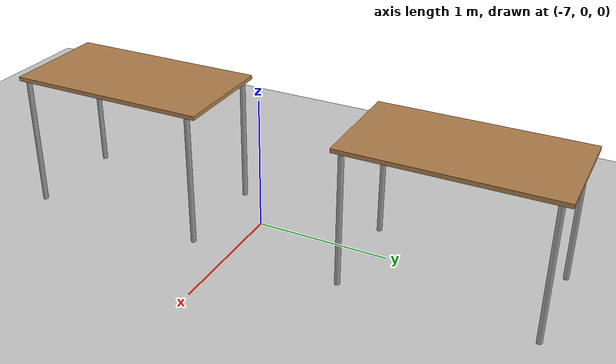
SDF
<sdf version="1.9">
 <world name="warehouse_world">
  <physics name="1ms" type="bullet">
   <max_step_size>0.0040000000000000001</max_step_size>
   <real_time_factor>1</real_time_factor>
   <real_time_update_rate>4000</real_time_update_rate>
  </physics>
  <plugin name="gz::sim::systems::Physics" filename="ignition-gazebo-physics-system"/>
  <plugin name="gz::sim::systems::UserCommands" filename="ignition-gazebo-user-commands-system"/>
  <plugin name="gz::sim::systems::SceneBroadcaster" filename="ignition-gazebo-scene-broadcaster-system"/>
  <plugin name="gz::sim::systems::Contact" filename="ignition-gazebo-contact-system"/>
  <gravity>0 0 -9.8</gravity>
  <magnetic_field>6e-06 2.3e-05 -4.2e-05</magnetic_field>
  <atmosphere type="adiabatic"/>
  <scene><ambient>0.4 0.4 0.4 1</ambient><background>0.7 0.7 0.7 1</background><shadows>true</shadows></scene>
  <model name="ground_plane">
   <static>true</static>
   <link name="link">
    <collision name="collision">
     <geometry><plane><normal>0 0 1</normal><size>100 100</size></plane></geometry>
    </collision>
    <visual name="visual">
     <geometry><plane><normal>0 0 1</normal><size>100 100</size></plane></geometry>
     <material>
      <ambient>0.8 0.8 0.8 1</ambient>
      <diffuse>0.8 0.8 0.8 1</diffuse>
      <specular>0.8 0.8 0.8 1</specular>
     </material>
    </visual>
    <inertial>
     <mass>1</mass>
     <inertia><ixx>1</ixx><ixy>0</ixy><ixz>0</ixz><iyy>1</iyy><iyz>0</iyz><izz>1</izz></inertia>
    </inertial>
   </link>
  </model>
  <model name="Table">
   <static>true</static>
   <link name="link">
    <collision name="surface">
     <pose>0 0 1.0 0 0 0</pose>
     <geometry><box><size>1.5 0.8 0.03</size></box></geometry>
     <surface><friction><ode><mu>0.59999999999999998</mu><mu2>0.59999999999999998</mu2></ode></friction></surface>
    </collision>
    <visual name="visual1">
     <pose>0 0 1.0 0 0 0</pose>
     <geometry><box><size>1.5 0.8 0.03</size></box></geometry>
     <material>
      <diffuse>1 1 1 1</diffuse>
      <script><uri>file://media/materials/scripts/gazebo.material</uri><name>Gazebo/Wood</name></script>
      <pbr><metal><albedo_map>model://Table/Table_Diffuse.jpg</albedo_map></metal></pbr>
     </material>
    </visual>
    <collision name="front_left_leg">
     <pose>0.68 0.38 0.5 0 0 0</pose>
     <geometry><cylinder><radius>0.02</radius><length>1</length></cylinder></geometry>
    </collision>
    <visual name="front_left_leg">
     <pose>0.68 0.38 0.5 0 0 0</pose>
     <geometry><cylinder><radius>0.02</radius><length>1</length></cylinder></geometry>
     <material>
      <diffuse>0.5 0.5 0.5 1</diffuse>
      <script><uri>file://media/materials/scripts/gazebo.material</uri><name>Gazebo/Grey</name></script>
     </material>
    </visual>
    <collision name="front_right_leg">
     <pose>0.68 -0.38 0.5 0 0 0</pose>
     <geometry><cylinder><radius>0.02</radius><length>1</length></cylinder></geometry>
    </collision>
    <visual name="front_right_leg">
     <pose>0.68 -0.38 0.5 0 0 0</pose>
     <geometry><cylinder><radius>0.02</radius><length>1</length></cylinder></geometry>
     <material>
      <diffuse>0.5 0.5 0.5 1</diffuse>
      <script><uri>file://media/materials/scripts/gazebo.material</uri><name>Gazebo/Grey</name></script>
     </material>
    </visual>
    <collision name="back_right_leg">
     <pose>-0.68 -0.38 0.5 0 0 0</pose>
     <geometry><cylinder><radius>0.02</radius><length>1</length></cylinder></geometry>
    </collision>
    <visual name="back_right_leg">
     <pose>-0.68 -0.38 0.5 0 0 0</pose>
     <geometry><cylinder><radius>0.02</radius><length>1</length></cylinder></geometry>
     <material>
      <diffuse>0.5 0.5 0.5 1</diffuse>
      <script><uri>file://media/materials/scripts/gazebo.material</uri><name>Gazebo/Grey</name></script>
     </material>
    </visual>
    <collision name="back_left_leg">
     <pose>-0.68 0.38 0.5 0 0 0</pose>
     <geometry><cylinder><radius>0.02</radius><length>1</length></cylinder></geometry>
    </collision>
    <visual name="back_left_leg">
     <pose>-0.68 0.38 0.5 0 0 0</pose>
     <geometry><cylinder><radius>0.02</radius><length>1</length></cylinder></geometry>
     <material>
      <diffuse>0.5 0.5 0.5 1</diffuse>
      <script><uri>file://media/materials/scripts/gazebo.material</uri><name>Gazebo/Grey</name></script>
     </material>
    </visual>
    <inertial>
     <mass>1</mass>
     <inertia><ixx>1</ixx><ixy>0</ixy><ixz>0</ixz><iyy>1</iyy><iyz>0</iyz><izz>1</izz></inertia>
    </inertial>
   </link>
   <pose>-6.95 -1 0 0 -0 1.5732</pose>
  </model>
  <model name="Table_0">
   <static>true</static>
   <link name="link">
    <collision name="surface">
     <pose>0 0 1.0 0 0 0</pose>
     <geometry><box><size>1.5 0.8 0.03</size></box></geometry>
     <surface><friction><ode><mu>0.59999999999999998</mu><mu2>0.59999999999999998</mu2></ode></friction></surface>
    </collision>
    <visual name="visual1">
     <pose>0 0 1.0 0 0 0</pose>
     <geometry><box><size>1.5 0.8 0.03</size></box></geometry>
     <material>
      <diffuse>1 1 1 1</diffuse>
      <script><uri>file://media/materials/scripts/gazebo.material</uri><name>Gazebo/Wood</name></script>
      <pbr><metal><albedo_map>model://Table/Table_Diffuse.jpg</albedo_map></metal></pbr>
     </material>
    </visual>
    <collision name="front_left_leg">
     <pose>0.68 0.38 0.5 0 0 0</pose>
     <geometry><cylinder><radius>0.02</radius><length>1</length></cylinder></geometry>
    </collision>
    <visual name="front_left_leg">
     <pose>0.68 0.38 0.5 0 0 0</pose>
     <geometry><cylinder><radius>0.02</radius><length>1</length></cylinder></geometry>
     <material>
      <diffuse>0.5 0.5 0.5 1</diffuse>
      <script><uri>file://media/materials/scripts/gazebo.material</uri><name>Gazebo/Grey</name></script>
     </material>
    </visual>
    <collision name="front_right_leg">
     <pose>0.68 -0.38 0.5 0 0 0</pose>
     <geometry><cylinder><radius>0.02</radius><length>1</length></cylinder></geometry>
    </collision>
    <visual name="front_right_leg">
     <pose>0.68 -0.38 0.5 0 0 0</pose>
     <geometry><cylinder><radius>0.02</radius><length>1</length></cylinder></geometry>
     <material>
      <diffuse>0.5 0.5 0.5 1</diffuse>
      <script><uri>file://media/materials/scripts/gazebo.material</uri><name>Gazebo/Grey</name></script>
     </material>
    </visual>
    <collision name="back_right_leg">
     <pose>-0.68 -0.38 0.5 0 0 0</pose>
     <geometry><cylinder><radius>0.02</radius><length>1</length></cylinder></geometry>
    </collision>
    <visual name="back_right_leg">
     <pose>-0.68 -0.38 0.5 0 0 0</pose>
     <geometry><cylinder><radius>0.02</radius><length>1</length></cylinder></geometry>
     <material>
      <diffuse>0.5 0.5 0.5 1</diffuse>
      <script><uri>file://media/materials/scripts/gazebo.material</uri><name>Gazebo/Grey</name></script>
     </material>
    </visual>
    <collision name="back_left_leg">
     <pose>-0.68 0.38 0.5 0 0 0</pose>
     <geometry><cylinder><radius>0.02</radius><length>1</length></cylinder></geometry>
    </collision>
    <visual name="back_left_leg">
     <pose>-0.68 0.38 0.5 0 0 0</pose>
     <geometry><cylinder><radius>0.02</radius><length>1</length></cylinder></geometry>
     <material>
      <diffuse>0.5 0.5 0.5 1</diffuse>
      <script><uri>file://media/materials/scripts/gazebo.material</uri><name>Gazebo/Grey</name></script>
     </material>
    </visual>
    <inertial>
     <mass>1</mass>
     <inertia><ixx>1</ixx><ixy>0</ixy><ixz>0</ixz><iyy>1</iyy><iyz>0</iyz><izz>1</izz></inertia>
    </inertial>
   </link>
   <pose>-6.95 1.5 0 0 -0 1.5732</pose>
  </model>
  <light name="sun" type="directional">
   <pose>0 0 10 0 -0 0</pose>
   <intensity>1</intensity>
   <direction>-0.5 0.1 -0.9</direction>
   <diffuse>0.8 0.8 0.8 1</diffuse>
   <specular>0.2 0.2 0.2 1</specular>
   <attenuation>
    <range>1000</range>
    <linear>0.01</linear>
    <constant>0.90000000000000002</constant>
    <quadratic>0.001</quadratic>
   </attenuation>
   <spot><inner_angle>0</inner_angle><outer_angle>0</outer_angle><falloff>0</falloff></spot>
  </light>
 </world>
</sdf>
